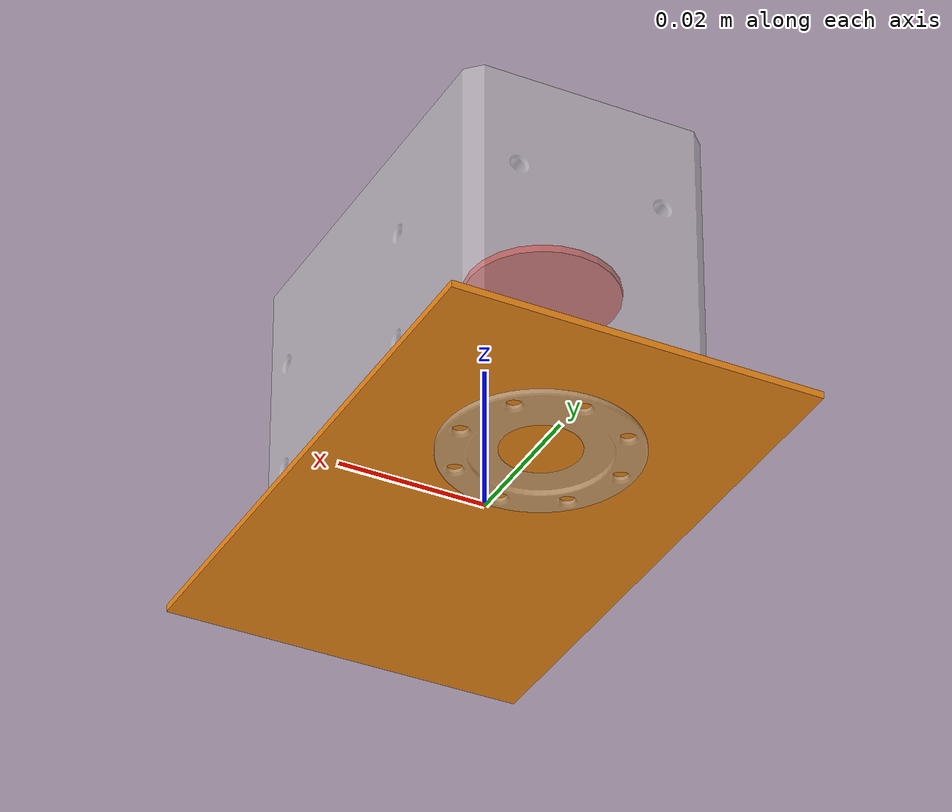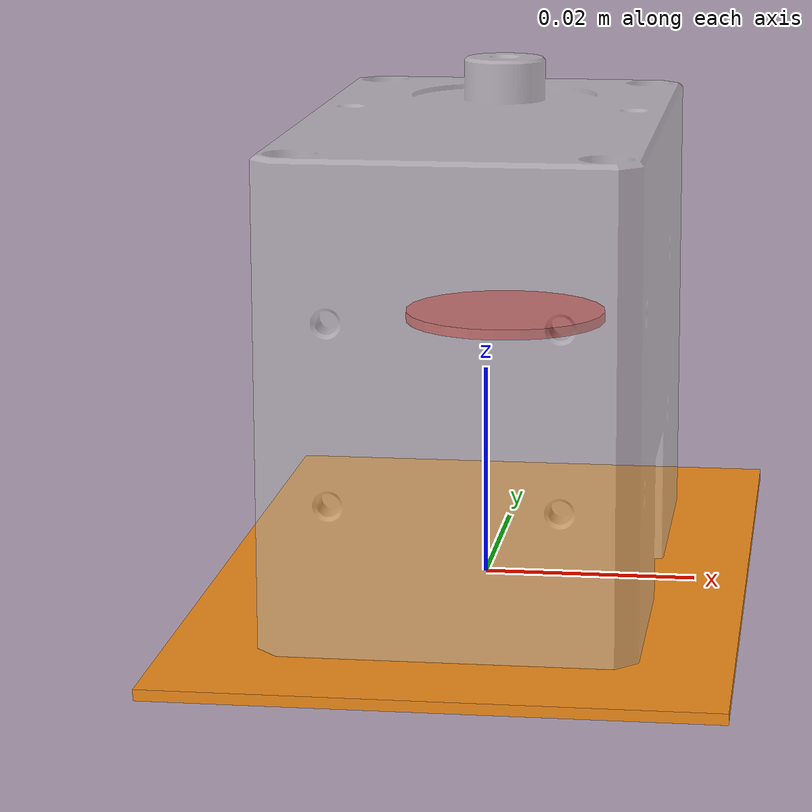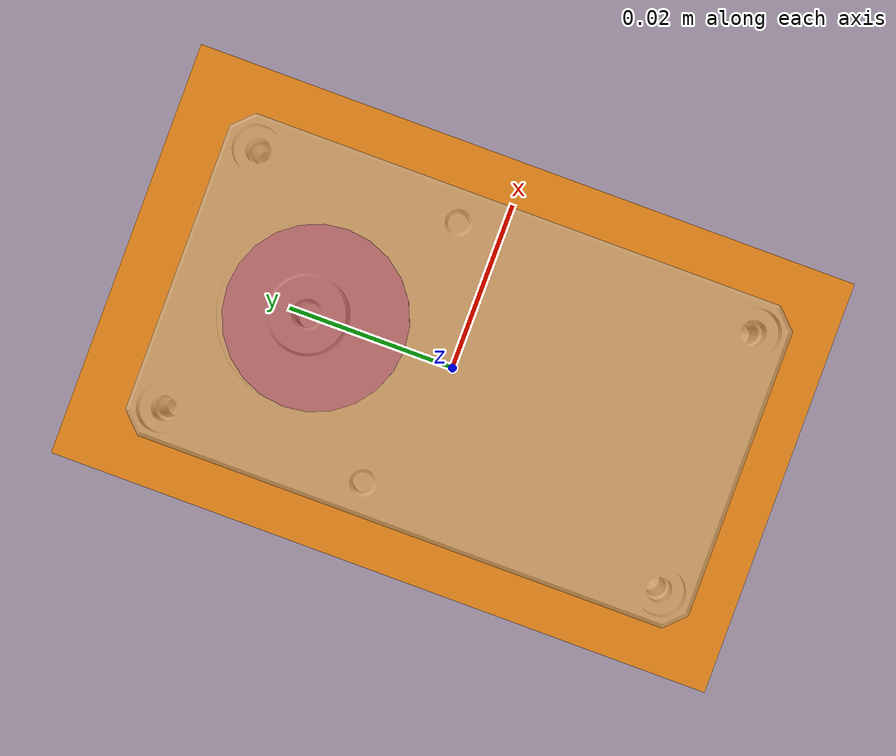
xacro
<?xml version="1.0"?>
<robot name="my_robo" xmlns:xacro="http://ros.org/wiki/xacro">\
	<xacro:include filename="$(find dynamixel_description)/urdf/_XM540.urdf.xacro"/>
	<xacro:include filename="$(find dynamixel_description)/urdf/common_properties.xacro"/>

	<link name="base">
		<visual>
			<origin xyz="0 0 0" rpy="0 0 0"/>
			<geometry>
				<box size="0.05 0.08 0.001"/>
			</geometry>
			<material name="orange"/>
		</visual>
	</link>

	<xacro:servo_XM540 parent="base" child="hone" center_child="true" fixed_plane="back"/>

	<link name="hone">
		<visual>
			<origin xyz="0 0 0" rpy="0 0 0"/>
			<geometry>
				<cylinder length="0.001" radius="0.01"/>
			</geometry>
			<material name="red"/>
		</visual>
	</link>

	<gazebo reference="base">
		<material>Gazebo/Orange</material>
	</gazebo>

	<gazebo reference="hone">
		<material>Gazebo/Red</material>
	</gazebo>

    <!--ros_controlプラグインをロード-->
    <gazebo>
        <plugin name="control" filename="libgazebo_ros_control.so">
        </plugin>
    </gazebo>

</robot>

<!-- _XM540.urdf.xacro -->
<!-- あとでdynamixel descriptionを作ってそこにれる -->
<robot name=" dynamixel-XM540" xmlns:xacro="http://ros.org/wiki/xacro">\
	<xacro:macro name="servo_XM540" params="name:='__defalut__' parent child fixed_plane:=bottom fixed_angle:=0 center_child:=false">

        <xacro:if value="${name == '__defalut__'}">
		    <xacro:property name="joint_name" value="${child}" />
        </xacro:if>
        <xacro:unless value="${name == '__defalut__'}">
		    <xacro:property name="joint_name" value="${name}" />
        </xacro:unless>

        <xacro:include filename="$(find dynamixel_description)/urdf/_XM540.gazebo.xacro"/>

        <!-- STL, daeファイルへの相対パス -->
		<xacro:property name="path_to_mesh" value="meshes/XM540-W150-R.dae" />
        <!-- 各辺の中点が原点となるように変換 -->
		<xacro:property name="visual_origin"> <origin xyz="${0} ${0.0386} ${0}" rpy="${-pi/2} 0 ${pi}" /> </xacro:property>
        <!-- 各辺の中点を原点としたときのホーン中心の座標 -->
		<xacro:property name="L_x_hone" value="${ 0.0/1000}" /> <!-- unit [m] --> <!-- converted from [mm] -->
		<xacro:property name="L_y_hone" value="${15.5/1000}" /> <!-- unit [m] --> <!-- converted from [mm] -->
		<xacro:property name="L_z_hone" value="${24.5/1000}" /> <!-- unit [m] --> <!-- converted from [mm] -->
		<xacro:property name="W_x" value="${33.5/1000}" /> <!-- unit [m] --> <!-- converted from [mm] -->
		<xacro:property name="W_y" value="${58.5/1000}" /> <!-- unit [m] --> <!-- converted from [mm] -->
		<xacro:property name="W_z" value="${44.0/1000}" /> <!-- unit [m] --> <!-- converted from [mm] -->
		<xacro:property name="no_load_speed" value="${66*(2*pi/60)}" /> <!-- unit [rad/sec] --> <!-- converted from [rev/min] -->
		<xacro:property name="stall_torque"  value="${8.9}" /> <!-- unit [Nm] -->
		<xacro:property name="mass"  value="${165/1000}" /> <!-- unit [kg] --> <!-- converted from [g] -->
		<xacro:property name="inertia"> <!-- unit [kg*m^@] --> <!-- converted from [g*mm^2] -->
			<inertia ixx="${72456.754/1000000000}"  ixy="${-128.62012/1000000000}" ixz="${-174.27089/1000000000}"
			                                        iyy="${ 38622.228/1000000000}" iyz="${-8272.2282/1000000000}"
			                                                                       izz="${ 60707.131/1000000000}" />
		</xacro:property>

		<joint name="${joint_name}_XM540_base_connector_" type="fixed">
			<parent link="${parent}"/>
			<child link="${joint_name}_dynx_XM540"/>
			<xacro:if value="${fixed_plane == 'bottom'}">
				<origin xyz="${0} ${0} ${W_y/2}" rpy="${pi/2} ${0} ${fixed_angle}"/> <!-- 回転が先 -->
			</xacro:if>
			<xacro:if value="${fixed_plane == 'top'}">
				<origin xyz="${0} ${0} ${-W_y/2}" rpy="${pi/2} ${0} ${fixed_angle}"/> <!-- 回転が先 -->
			</xacro:if>
			<xacro:if value="${fixed_plane == 'back'}">
				<origin xyz="${0} ${0} ${W_z/2}" rpy="${0} ${0} ${fixed_angle}"/> <!-- 回転が先 -->
			</xacro:if>
		</joint>

		<link name="${joint_name}_dynx_XM540">
			<inertial>
				<origin xyz="0 0 0" rpy="0 0 0"/>
				<mass value="${mass}"/>
				<xacro:insert_block name="inertia"/>
			</inertial>
			<visual>
				<xacro:insert_block name="visual_origin"/>
				<geometry>
					<mesh filename="package://dynamixel_description/${path_to_mesh}" />
				</geometry>
				<material name="gray">
					<color rgba="0.8 0.8 0.8 0.5"/>
				</material>
			</visual>
			<collision>
				<origin xyz="0 0 0" rpy="0 0 0"/>
				<geometry>
					<box size="${W_x} ${W_y} ${W_z}"/>
				</geometry>
			</collision>
		</link>

		<joint name="${joint_name}_joint" type="continuous">
			<parent link="${joint_name}_dynx_XM540"/>
			<child link="${joint_name}_dynx_XM540_hone"/>
			<origin xyz="${L_x_hone} ${L_y_hone} ${L_z_hone}" rpy="0 0 0"/>
			<axis xyz="0 0 1"/>
			<dynamics damping="0.1"/>
			<limit velocity="${no_load_speed}" effort="${stall_torque}" />
		</joint>

		<link name="${joint_name}_dynx_XM540_hone" >
			<inertial>
			<origin xyz="0 0 0" rpy="0 0 0" />
			<mass value="0.00001" />
			<inertia
				ixx="0.00001" ixy="0.0" ixz="0.0"
				iyy="0.00001" iyz="0.0"
				izz="0.00001" />
			</inertial>
		</link>

		<joint name="${joint_name}_XM540_hone_joint_" type="fixed">
			<parent link="${joint_name}_dynx_XM540_hone"/>
			<child link="${child}"/>
			<xacro:if value="${center_child}">
				<origin xyz="0 0 ${-L_z_hone}" rpy="0 0 0"/>
			</xacro:if>
			<xacro:unless value="${center_child}">
				<origin xyz="0 0 0" rpy="0 0 0"/>
			</xacro:unless>
		</joint>

	</xacro:macro>

    <!-- フレームFR12_S102Kを装着したver -->
    <xacro:macro name="servo_XM540_FR12_S102K" params="name:='__defalut__' parent child fixed_plane:=bottom fixed_angle:=0 center_child:=false">
        <xacro:property name="path_to_mesh" value="meshes/fr12_s102.stl" />
        <!-- 各辺の中点が原点となるように変換 -->
		<xacro:property name="visual_origin"> <origin xyz="${0} ${0} ${19.5/1000-offset}" rpy="${pi} ${0} ${pi/2}" /> </xacro:property>
		<xacro:property name="offset"  value="${5.25/1000}" /> <!-- unit [kg] --> <!-- converted from [g] -->
		<xacro:property name="mass"  value="${165/1000}" /> <!-- unit [kg] --> <!-- converted from [g] -->
		<xacro:property name="inertia"> <!-- unit [kg*m^@] --> <!-- converted from [g*mm^2] -->
			<inertia ixx="${ 1999.314/1000000000}"  ixy="${    0.0  /1000000000}" ixz="${     0.0  /1000000000}"
			                                        iyy="${ 2690.794/1000000000}" iyz="${     0.0  /1000000000}"
			                                                                       izz="${ 1440.750/1000000000}" />
		</xacro:property>

        <joint name="${name}_XM540_FR12_S102K_connect_" type="fixed">
			<parent link="${parent}"/>
			<child link="${name}_fr_FR12_S102K_"/>
            <origin xyz="${0} ${0} ${offset}" rpy="${0} ${0} ${fixed_angle}"/> <!-- 回転が先 -->
		</joint>

		<link name="${name}_fr_FR12_S102K_">
			<inertial>
				<origin xyz="0 0 0" rpy="0 0 0"/>
				<mass value="${mass}"/>
				<xacro:insert_block name="inertia"/>
			</inertial>
			<visual>
				<xacro:insert_block name="visual_origin"/>
				<geometry>
					<mesh filename="package://dynamixel_description/${path_to_mesh}" />
				</geometry>
				<material name="gray">
					<color rgba="0.8 0.8 0.8 0.5"/>
				</material>
			</visual>
		</link>

    	<xacro:servo_XM540 name="${name}" parent="${name}_fr_FR12_S102K_" child="${child}" center_child="${center_child}" fixed_plane="${fixed_plane}"/>

	</xacro:macro>

</robot>
